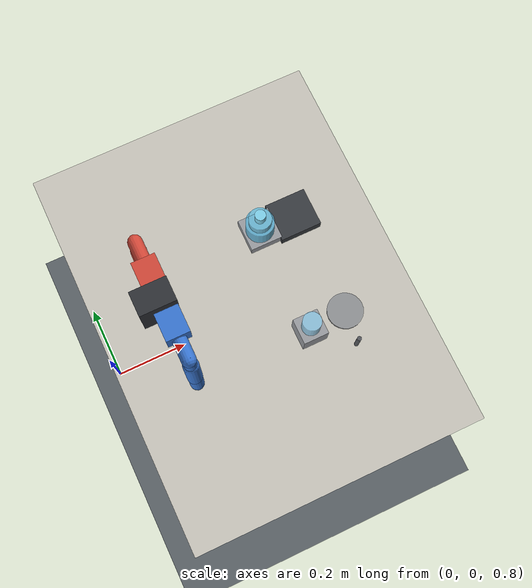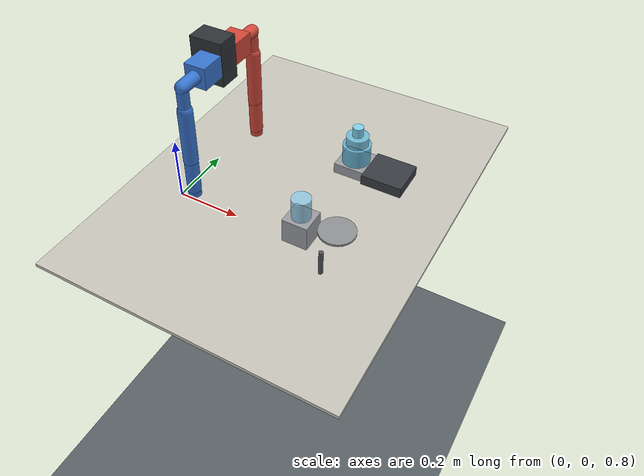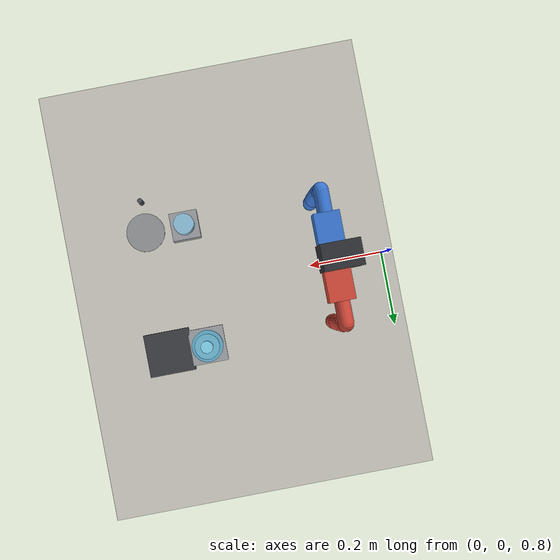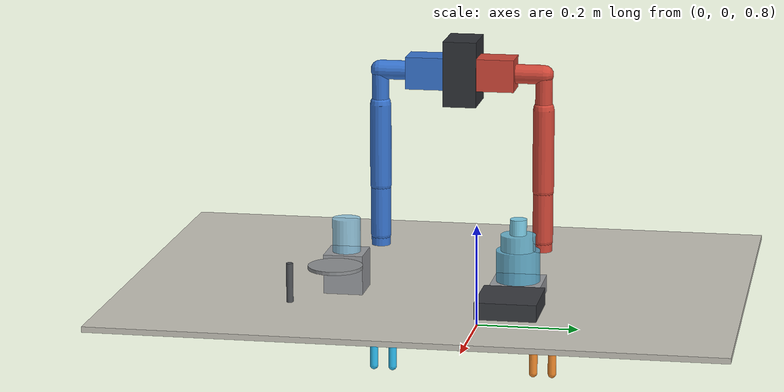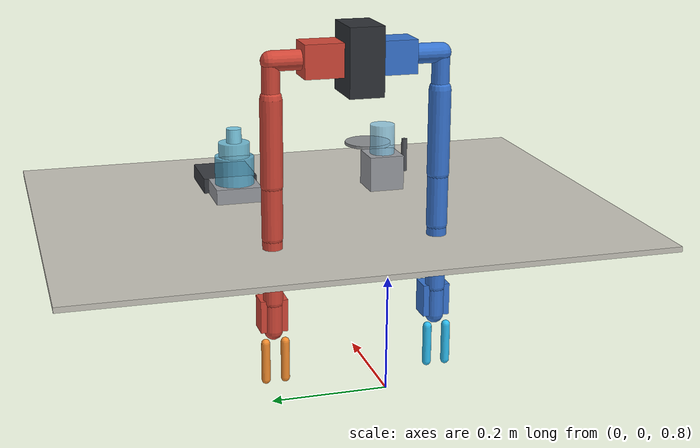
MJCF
<?xml version="1.0" encoding="utf-8"?>
<mujoco model="robobuddy_openarm_v2_phase5a">
  <compiler angle="radian"/>
  <option timestep="0.001" integrator="Euler" cone="elliptic" impratio="10" gravity="0 0 -9.81"/>

  <default>
    <joint stiffness="0" ref="0"/>
    <default class="motor_DM8009">
      <joint frictionloss="0.2" damping="1.0" armature="0.0081" limited="true" type="hinge"/>
    </default>
    <default class="motor_DM4340">
      <joint frictionloss="0.1" damping="0.9" armature="0.1600" limited="true" type="hinge"/>
    </default>
    <default class="motor_DM4310">
      <joint frictionloss="0.04" damping="0.9" armature="0.0100" limited="true" type="hinge"/>
    </default>
    <default class="motor_DM3507">
      <joint frictionloss="0.01" damping="0.01" armature="0.0049" limited="true" type="hinge"/>
    </default>
    <default class="motor_finger">
      <joint limited="true" type="hinge" damping="2" armature="0.01"/>
    </default>
    <default class="robot_left_collision">
      <geom contype="1" conaffinity="2" condim="3" friction="1 0.01 0.01" solref="0.005 1" rgba="0.82 0.28 0.22 1"/>
    </default>
    <default class="robot_right_collision">
      <geom contype="2" conaffinity="1" condim="3" friction="1 0.01 0.01" solref="0.005 1" rgba="0.22 0.46 0.82 1"/>
    </default>
    <default class="left_fingertip">
      <geom contype="1" conaffinity="3" condim="4" friction="1.1 0.01 0.001" solref="0.005 1" rgba="0.95 0.55 0.18 1"/>
    </default>
    <default class="right_fingertip">
      <geom contype="2" conaffinity="3" condim="4" friction="1.1 0.01 0.001" solref="0.005 1" rgba="0.18 0.75 0.95 1"/>
    </default>
    <default class="fixture">
      <geom contype="3" conaffinity="3" condim="3" friction="0.9 0.005 0.0005" solref="0.005 1" rgba="0.48 0.52 0.56 1"/>
    </default>
    <default class="vessel">
      <geom contype="3" conaffinity="3" condim="4" friction="1.0 0.01 0.001" solref="0.005 1"/>
    </default>
  </default>

  <worldbody>
    <geom name="floor" type="plane" size="2 2 0.05" class="fixture" rgba="0.35 0.38 0.40 1"/>
    <geom name="cell_table" type="box" pos="0.41 0 1.000" size="0.41 0.55 0.005" class="fixture" rgba="0.78 0.77 0.73 1"/>

    <!-- Left pickup pedestal and unpowered hotplate. -->
    <geom name="left_source_support" type="box" pos="0.509 0.1535 1.020" size="0.045 0.045 0.015" class="fixture" rgba="0.60 0.61 0.63 1"/>
    <geom name="left_hotplate" type="box" pos="0.608 0.1535 1.020" size="0.058 0.054 0.015" class="fixture" rgba="0.22 0.23 0.25 1"/>

    <!-- Right pickup pedestal and ring-stand/gauze support. -->
    <geom name="right_source_support" type="box" pos="0.509 -0.1535 1.040" size="0.035 0.035 0.035" class="fixture" rgba="0.60 0.61 0.63 1"/>
    <geom name="right_ring_post" type="cylinder" pos="0.608 -0.235 1.040" size="0.006 0.035" class="fixture" rgba="0.32 0.33 0.35 1"/>
    <geom name="right_ring_gauze" type="cylinder" pos="0.608 -0.1535 1.072" size="0.048 0.003" class="fixture" rgba="0.56 0.57 0.58 1"/>

    <!-- Source V2 cell mounting relationship: arm origin at x=.185,z=1.34. -->
    <body name="openarm_mount" pos="0.185 0 1.34">
      <geom name="mount_proxy" type="box" pos="-0.015 0 0" size="0.046 0.031 0.061" contype="3" conaffinity="3" rgba="0.18 0.19 0.21 1"/>

      <body name="openarm_left_base_link" pos="0 0.031 0">
        <inertial pos="-0.00253124 0.0258186 -2.70658e-05" quat="-1.46856942085e-06 0.70739772103 0.706815721259 2.1457591538e-05" mass="1.14323" diaginertia="0.00159935 0.00113608 0.000750542"/>
        <geom name="left_base_proxy" type="box" pos="0 0.030 0" size="0.030 0.040 0.030" class="robot_left_collision"/>
        <body name="openarm_left_link1" pos="0 0.0625 0">
          <inertial pos="0.00090035 0.044466 2.88441e-05" quat="0.999901 -0.000371041 -5.04627e-05 -0.0140338" mass="1.14167" diaginertia="0.00109459 0.000758935 0.000670659"/>
          <joint name="openarm_left_joint1" axis="0 1 0" range="-3.4907 1.3963" actuatorfrcrange="-40 40" class="motor_DM8009"/>
          <geom name="left_link1_proxy" type="capsule" fromto="0 0 0 0 0.060 0" size="0.018" class="robot_left_collision"/>
          <body name="openarm_left_link2" pos="0 0.060 0">
            <inertial pos="-0.0247185 -7.60578e-08 -0.0312643" quat="0.999342 -6.47495e-06 -0.0362804 3.02331e-06" mass="0.277509" diaginertia="0.000153968 0.000113062 8.19211e-05"/>
            <joint name="openarm_left_joint2" axis="-1 0 0" range="-3.3161 0.17453" actuatorfrcrange="-40 40" class="motor_DM8009"/>
            <geom name="left_link2_proxy" type="capsule" fromto="0 0 0 0 0 -0.06625" size="0.016" class="robot_left_collision"/>
            <body name="openarm_left_link3" pos="0 0 -0.06625">
              <inertial pos="-0.00300862 -0.000514813 -0.109368" quat="0.998906 -0.00891348 0.0458105 0.00280505" mass="1.07386" diaginertia="0.00129561 0.00114038 0.000553361"/>
              <joint name="openarm_left_joint3" axis="0 0 -1" range="-1.5708 1.5708" actuatorfrcrange="-27 27" class="motor_DM4340"/>
              <geom name="left_link3_proxy" type="capsule" fromto="0 0 0 0 0 -0.15375" size="0.020" class="robot_left_collision"/>
              <body name="openarm_left_link4" pos="0 0 -0.15375">
                <inertial pos="-0.00310326 -0.00136539 -0.0574601" quat="0.996952 0.00947325 0.00348083 0.0773554" mass="0.634853" diaginertia="0.000469894 0.000433114 0.000245134"/>
                <joint name="openarm_left_joint4" axis="0 -1 0" range="0 2.4435" actuatorfrcrange="-27 27" class="motor_DM4340"/>
                <geom name="left_link4_proxy" type="capsule" fromto="0 0 0 0 0 -0.0955" size="0.019" class="robot_left_collision"/>
                <body name="openarm_left_link5" pos="0 0 -0.0955">
                  <inertial pos="-0.000737189 0.000412407 -0.0470938" quat="0.685547 -0.0023482 -0.00297125 0.728019" mass="0.615659" diaginertia="0.000334799 0.00027946 0.000176657"/>
                  <joint name="openarm_left_joint5" axis="0 0 -1" range="-1.5708 1.5708" actuatorfrcrange="-7 7" class="motor_DM4310"/>
                  <geom name="left_link5_proxy" type="capsule" fromto="0 0 0 0 0 -0.1205" size="0.018" class="robot_left_collision"/>
                  <body name="openarm_left_link6" pos="0 0 -0.1205">
                    <inertial pos="2.27438e-05 -0.000686496 5.44e-05" quat="0.999832 -0.0183155 0.000397003 -0.000757974" mass="0.475203" diaginertia="0.000179276 0.000136249 0.000135339"/>
                    <joint name="openarm_left_joint6" axis="0 -1 0" range="-0.7854 0.7854" actuatorfrcrange="-7 7" class="motor_DM4310"/>
                    <geom name="left_link6_proxy" type="capsule" fromto="0 0 0 0 0 -0.055" size="0.017" class="robot_left_collision"/>
                    <body name="openarm_left_ee_base_link">
                      <inertial pos="0.0137902 -0.0084073 -0.05938" quat="0.760121 0.648846 -0.0304587 -0.0169317" mass="0.52832" diaginertia="0.000219417 0.000166122 0.000155742"/>
                      <joint name="openarm_left_joint7" axis="1 0 0" range="-1.5708 1.5708" actuatorfrcrange="-7 7" class="motor_DM3507"/>
                      <geom name="left_ee_proxy" type="box" pos="0.010 0 -0.025" size="0.020 0.025 0.030" class="robot_left_collision"/>
                      <site name="left_ee_control_point" pos="0 0 0" size="0.006" rgba="0 1 0 1"/>
                      <body name="openarm_left_ee_inner_finger" pos="-0.00143 -0.018 -0.068">
                        <inertial pos="-0.0124991 -0.00176593 -0.0241663" quat="0.982638 0.0922084 -0.15927 -0.0235197" mass="0.125979" diaginertia="3.8543e-05 3.6883e-05 1.43942e-05"/>
                        <joint name="openarm_left_finger_joint1" axis="-1 0 0" range="0 0.7854" actuatorfrcrange="-10 10" class="motor_finger"/>
                        <!-- Primitive surrogate is centered on the source finger's longitudinal offset instead of the joint axis. -->
                        <geom name="left_inner_fingertip" type="capsule" fromto="-0.0125 0 -0.005 -0.0125 0 -0.075" size="0.008" class="left_fingertip"/>
                      </body>
                      <body name="openarm_left_ee_outer_finger" pos="-0.00143 0.018 -0.068">
                        <inertial pos="-0.012796 0.0020183 -0.026792" quat="0.982097 -0.0906989 -0.165079 0.00294117" mass="0.11372" diaginertia="3.70662e-05 3.60159e-05 1.33599e-05"/>
                        <joint name="openarm_left_finger_joint2" axis="1 0 0" range="0 0.7854" actuatorfrcrange="-10 10" class="motor_finger"/>
                        <geom name="left_outer_fingertip" type="capsule" fromto="-0.0128 0 -0.005 -0.0128 0 -0.075" size="0.008" class="left_fingertip"/>
                      </body>
                    </body>
                  </body>
                </body>
              </body>
            </body>
          </body>
        </body>
      </body>

      <body name="openarm_right_base_link" pos="0 -0.031 0">
        <inertial pos="-0.00253124 -0.0258186 -2.70658e-05" quat="2.1457591538e-05 0.706815721259 0.70739772103 -1.46856942085e-06" mass="1.14323" diaginertia="0.00159935 0.00113608 0.000750542"/>
        <geom name="right_base_proxy" type="box" pos="0 -0.030 0" size="0.030 0.040 0.030" class="robot_right_collision"/>
        <body name="openarm_right_link1" pos="0 -0.0625 0">
          <inertial pos="0.00090035 -0.044466 2.88441e-05" quat="0.999901 0.000371041 -5.04627e-05 0.0140338" mass="1.14167" diaginertia="0.00109459 0.000758935 0.000670659"/>
          <joint name="openarm_right_joint1" axis="0 -1 0" range="-1.3963 3.4907" actuatorfrcrange="-40 40" class="motor_DM8009"/>
          <geom name="right_link1_proxy" type="capsule" fromto="0 0 0 0 -0.060 0" size="0.018" class="robot_right_collision"/>
          <body name="openarm_right_link2" pos="0 -0.060 0">
            <inertial pos="-0.0247185 7.60578e-08 -0.0312643" quat="0.999342 6.47495e-06 -0.0362804 -3.02331e-06" mass="0.277509" diaginertia="0.000153968 0.000113062 8.19211e-05"/>
            <joint name="openarm_right_joint2" axis="-1 0 0" range="-0.17453 3.3161" actuatorfrcrange="-40 40" class="motor_DM8009"/>
            <geom name="right_link2_proxy" type="capsule" fromto="0 0 0 0 0 -0.06625" size="0.016" class="robot_right_collision"/>
            <body name="openarm_right_link3" pos="0 0 -0.06625">
              <inertial pos="-0.00300862 -0.000514813 -0.109368" quat="0.998906 -0.00891348 0.0458105 0.00280505" mass="1.07386" diaginertia="0.00129561 0.00114038 0.000553361"/>
              <joint name="openarm_right_joint3" axis="0 0 -1" range="-1.5708 1.5708" actuatorfrcrange="-27 27" class="motor_DM4340"/>
              <geom name="right_link3_proxy" type="capsule" fromto="0 0 0 0 0 -0.15375" size="0.020" class="robot_right_collision"/>
              <body name="openarm_right_link4" pos="0 0 -0.15375">
                <inertial pos="-0.00310326 -0.00136539 -0.0574601" quat="0.996952 0.00947325 0.00348083 0.0773554" mass="0.634853" diaginertia="0.000469894 0.000433114 0.000245134"/>
                <joint name="openarm_right_joint4" axis="0 -1 0" range="0 2.4435" actuatorfrcrange="-27 27" class="motor_DM4340"/>
                <geom name="right_link4_proxy" type="capsule" fromto="0 0 0 0 0 -0.0955" size="0.019" class="robot_right_collision"/>
                <body name="openarm_right_link5" pos="0 0 -0.0955">
                  <inertial pos="-0.000737189 -0.000412407 -0.0470938" quat="0.728019 -0.00297125 -0.0023482 0.685547" mass="0.615659" diaginertia="0.000334799 0.00027946 0.000176657"/>
                  <joint name="openarm_right_joint5" axis="0 0 -1" range="-1.5708 1.5708" actuatorfrcrange="-7 7" class="motor_DM4310"/>
                  <geom name="right_link5_proxy" type="capsule" fromto="0 0 0 0 0 -0.1205" size="0.018" class="robot_right_collision"/>
                  <body name="openarm_right_link6" pos="0 0 -0.1205">
                    <inertial pos="2.27438e-05 0.000686496 5.44e-05" quat="0.999832 0.0183155 0.000397003 0.000757974" mass="0.475203" diaginertia="0.000179276 0.000136249 0.000135339"/>
                    <joint name="openarm_right_joint6" axis="0 1 0" range="-0.7854 0.7854" actuatorfrcrange="-7 7" class="motor_DM4310"/>
                    <geom name="right_link6_proxy" type="capsule" fromto="0 0 0 0 0 -0.055" size="0.017" class="robot_right_collision"/>
                    <body name="openarm_right_ee_base_link">
                      <inertial pos="0.0137902 0.0084073 -0.05938" quat="0.648846 0.760121 0.0169317 0.0304587" mass="0.52832" diaginertia="0.000219417 0.000166122 0.000155742"/>
                      <joint name="openarm_right_joint7" axis="1 0 0" range="-1.5708 1.5708" actuatorfrcrange="-7 7" class="motor_DM3507"/>
                      <geom name="right_ee_proxy" type="box" pos="0.010 0 -0.025" size="0.020 0.025 0.030" class="robot_right_collision"/>
                      <site name="right_ee_control_point" pos="0 0 0" size="0.006" rgba="1 0 0 1"/>
                      <body name="openarm_right_ee_inner_finger" pos="-0.00143 0.018 -0.068">
                        <inertial pos="-0.0124991 0.00176593 -0.0241663" quat="0.982638 -0.0922084 -0.15927 0.0235197" mass="0.125979" diaginertia="3.8543e-05 3.6883e-05 1.43942e-05"/>
                        <joint name="openarm_right_finger_joint1" axis="-1 0 0" range="-0.7854 0" actuatorfrcrange="-10 10" class="motor_finger"/>
                        <geom name="right_inner_fingertip" type="capsule" fromto="-0.0125 0 -0.005 -0.0125 0 -0.075" size="0.008" class="right_fingertip"/>
                      </body>
                      <body name="openarm_right_ee_outer_finger" pos="-0.00143 -0.018 -0.068">
                        <inertial pos="-0.012796 -0.0020183 -0.026792" quat="0.982097 0.0906989 -0.165079 -0.00294117" mass="0.11372" diaginertia="3.70662e-05 3.60159e-05 1.33599e-05"/>
                        <joint name="openarm_right_finger_joint2" axis="1 0 0" range="-0.7854 0" actuatorfrcrange="-10 10" class="motor_finger"/>
                        <geom name="right_outer_fingertip" type="capsule" fromto="-0.0128 0 -0.005 -0.0128 0 -0.075" size="0.008" class="right_fingertip"/>
                      </body>
                    </body>
                  </body>
                </body>
              </body>
            </body>
          </body>
        </body>
      </body>
    </body>

    <!-- Dry free-body vessels. Ordinary task execution never writes their qpos/qvel. -->
    <body name="flask" pos="0.509 0.1535 1.092">
      <freejoint name="flask_free"/>
      <inertial pos="0 0 -0.015" mass="0.060" diaginertia="0.000088 0.000088 0.000046"/>
      <geom name="flask_body_geom" type="cylinder" pos="0 0 -0.0295" size="0.039 0.0275" class="vessel" rgba="0.38 0.72 0.86 0.85"/>
      <geom name="flask_shoulder_geom" type="cylinder" pos="0 0 0.012" size="0.031 0.014" class="vessel" rgba="0.44 0.77 0.89 0.88"/>
      <geom name="flask_grip_geom" type="cylinder" pos="0 0 0.040" size="0.015 0.014" class="vessel" rgba="0.50 0.82 0.92 0.90"/>
    </body>
    <body name="beaker" pos="0.509 -0.1535 1.105">
      <freejoint name="beaker_free"/>
      <inertial pos="0 0 -0.002" mass="0.050" diaginertia="0.000023 0.000023 0.000016"/>
      <geom name="beaker_grip_geom" type="cylinder" size="0.025 0.030" class="vessel" rgba="0.58 0.82 0.94 0.82"/>
    </body>
  </worldbody>

  <equality>
    <!-- Legitimate source mechanical couplings only; no vessel/gripper welds. -->
    <joint name="openarm_left_ee_finger_joint_mimic" joint1="openarm_left_finger_joint1" joint2="openarm_left_finger_joint2" polycoef="0 1 0 0 0" solimp="0.95 0.99 0.001" solref="0.005 1"/>
    <joint name="openarm_right_ee_finger_joint_mimic" joint1="openarm_right_finger_joint1" joint2="openarm_right_finger_joint2" polycoef="0 1 0 0 0" solimp="0.95 0.99 0.001" solref="0.005 1"/>
  </equality>

  <actuator>
    <position name="left_joint1_ctrl" joint="openarm_left_joint1" kp="230" kv="2.7" forcelimited="true" forcerange="-40 40" ctrllimited="true" ctrlrange="-3.49066 1.39626"/>
    <position name="left_joint2_ctrl" joint="openarm_left_joint2" kp="230" kv="2.7" forcelimited="true" forcerange="-40 40" ctrllimited="true" ctrlrange="-3.31613 0.174533"/>
    <position name="left_joint3_ctrl" joint="openarm_left_joint3" kp="190" kv="2.2" forcelimited="true" forcerange="-27 27" ctrllimited="true" ctrlrange="-1.5708 1.5708"/>
    <position name="left_joint4_ctrl" joint="openarm_left_joint4" kp="190" kv="2.2" forcelimited="true" forcerange="-27 27" ctrllimited="true" ctrlrange="0 2.44346"/>
    <position name="left_joint5_ctrl" joint="openarm_left_joint5" kp="30" kv="1.5" forcelimited="true" forcerange="-7 7" ctrllimited="true" ctrlrange="-1.5708 1.5708"/>
    <position name="left_joint6_ctrl" joint="openarm_left_joint6" kp="30" kv="1.5" forcelimited="true" forcerange="-7 7" ctrllimited="true" ctrlrange="-0.785398 0.785398"/>
    <position name="left_joint7_ctrl" joint="openarm_left_joint7" kp="30" kv="1.5" forcelimited="true" forcerange="-7 7" ctrllimited="true" ctrlrange="-1.5708 1.5708"/>
    <position name="left_finger1_ctrl" joint="openarm_left_finger_joint1" kp="30" kv="0.2" forcelimited="true" forcerange="-7 7" ctrllimited="true" ctrlrange="0 0.7854"/>

    <position name="right_joint1_ctrl" joint="openarm_right_joint1" kp="230" kv="2.7" forcelimited="true" forcerange="-40 40" ctrllimited="true" ctrlrange="-1.39626 3.49066"/>
    <position name="right_joint2_ctrl" joint="openarm_right_joint2" kp="230" kv="2.7" forcelimited="true" forcerange="-40 40" ctrllimited="true" ctrlrange="-0.174533 3.31613"/>
    <position name="right_joint3_ctrl" joint="openarm_right_joint3" kp="190" kv="2.2" forcelimited="true" forcerange="-27 27" ctrllimited="true" ctrlrange="-1.5708 1.5708"/>
    <position name="right_joint4_ctrl" joint="openarm_right_joint4" kp="190" kv="2.2" forcelimited="true" forcerange="-27 27" ctrllimited="true" ctrlrange="0 2.44346"/>
    <position name="right_joint5_ctrl" joint="openarm_right_joint5" kp="30" kv="1.5" forcelimited="true" forcerange="-7 7" ctrllimited="true" ctrlrange="-1.5708 1.5708"/>
    <position name="right_joint6_ctrl" joint="openarm_right_joint6" kp="30" kv="1.5" forcelimited="true" forcerange="-7 7" ctrllimited="true" ctrlrange="-0.785398 0.785398"/>
    <position name="right_joint7_ctrl" joint="openarm_right_joint7" kp="30" kv="1.5" forcelimited="true" forcerange="-7 7" ctrllimited="true" ctrlrange="-1.5708 1.5708"/>
    <position name="right_finger1_ctrl" joint="openarm_right_finger_joint1" kp="30" kv="0.2" forcelimited="true" forcerange="-7 7" ctrllimited="true" ctrlrange="-0.7854 0"/>
  </actuator>
</mujoco>
